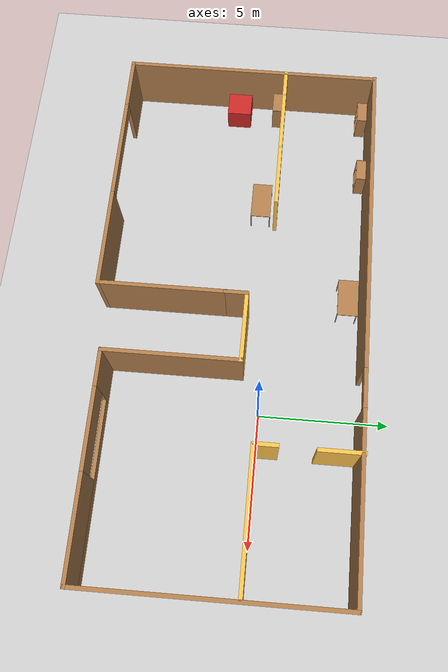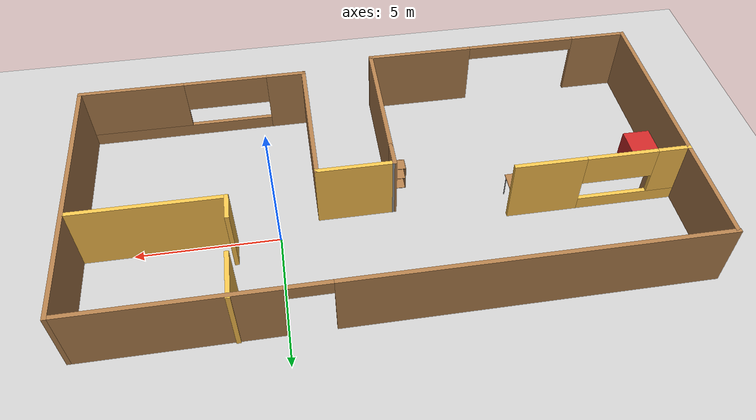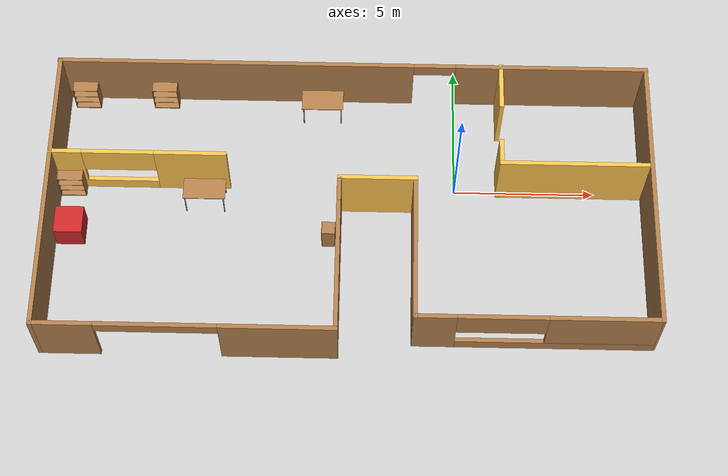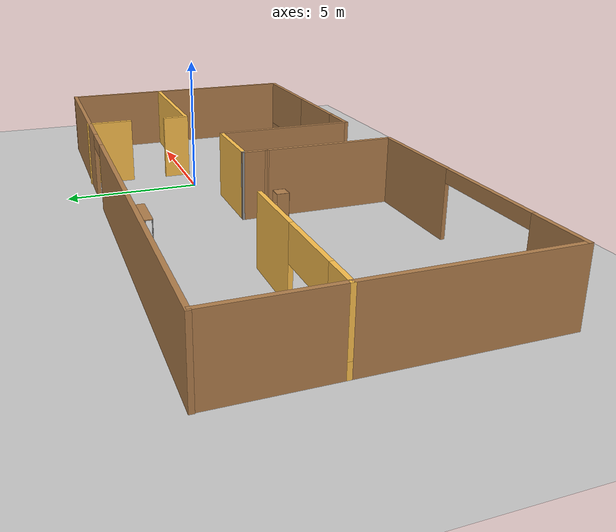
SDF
<sdf version="1.6">
 <world name="default">
  <model name="ground_plane">
   <static>1</static>
   <link name="link">
    <collision name="collision">
     <geometry><plane><normal>0 0 1</normal><size>100 100</size></plane></geometry>
     <surface>
      <contact><collide_bitmask>65535</collide_bitmask></contact>
      <friction><ode><mu>100</mu><mu2>50</mu2></ode></friction>
     </surface>
    </collision>
    <visual name="visual">
     <cast_shadows>0</cast_shadows>
     <geometry><plane><normal>0 0 1</normal><size>100 100</size></plane></geometry>
     <material>
      <script><uri>file://media/materials/scripts/gazebo.material</uri><name>Gazebo/Grey</name></script>
     </material>
    </visual>
   </link>
  </model>
  <model name="Building">
   <pose>-3.7513 -1.28826 0 0 -0 0</pose>
   <link name="Wall_0">
    <collision name="Wall_0_Collision">
     <geometry><box><size>10.3409 0.15 2.5</size></box></geometry>
     <pose>0 0 1.25 0 -0 0</pose>
    </collision>
    <visual name="Wall_0_Visual">
     <pose>0 0 1.25 0 -0 0</pose>
     <geometry><box><size>10.3409 0.15 2.5</size></box></geometry>
     <material>
      <script><uri>file://media/materials/scripts/gazebo.material</uri><name>Gazebo/Wood</name></script>
      <ambient>1 1 1 1</ambient>
     </material>
     <meta><layer>0</layer></meta>
    </visual>
    <pose>-10.4852 -0.044615 0 0 0 -1.5708</pose>
   </link>
   <link name="Wall_1">
    <pose>-5.42169 -5.14004 0 0 -0 0</pose>
    <visual name="Wall_1_Visual_0">
     <pose>-4.05898 0 1.25 0 -0 0</pose>
     <geometry><box><size>2.15905 0.15 2.5</size></box></geometry>
     <material>
      <script><uri>file://media/materials/scripts/gazebo.material</uri><name>Gazebo/Wood</name></script>
      <ambient>0.760784 0.662745 0.627451 1</ambient>
     </material>
     <meta><layer>0</layer></meta>
    </visual>
    <collision name="Wall_1_Collision_0">
     <geometry><box><size>2.15905 0.15 2.5</size></box></geometry>
     <pose>-4.05898 0 1.25 0 -0 0</pose>
    </collision>
    <visual name="Wall_1_Visual_1">
     <pose>3.14775 0 1.25 0 -0 0</pose>
     <geometry><box><size>3.98151 0.15 2.5</size></box></geometry>
     <material>
      <script><uri>file://media/materials/scripts/gazebo.material</uri><name>Gazebo/Wood</name></script>
      <ambient>0.760784 0.662745 0.627451 1</ambient>
     </material>
     <meta><layer>0</layer></meta>
    </visual>
    <collision name="Wall_1_Collision_1">
     <geometry><box><size>3.98151 0.15 2.5</size></box></geometry>
     <pose>3.14775 0 1.25 0 -0 0</pose>
    </collision>
    <visual name="Wall_1_Visual_2">
     <pose>-0.91123 0 2.25 0 -0 0</pose>
     <geometry><box><size>4.13645 0.15 0.5</size></box></geometry>
     <material>
      <script><uri>file://media/materials/scripts/gazebo.material</uri><name>Gazebo/Wood</name></script>
      <ambient>0.760784 0.662745 0.627451 1</ambient>
     </material>
     <meta><layer>0</layer></meta>
    </visual>
    <collision name="Wall_1_Collision_2">
     <geometry><box><size>4.13645 0.15 0.5</size></box></geometry>
     <pose>-0.91123 0 2.25 0 -0 0</pose>
    </collision>
   </link>
   <link name="Wall_11">
    <pose>-7.43569 1.35896 0 0 -0 3.14159</pose>
    <visual name="Wall_11_Visual_0">
     <pose>-1.85039 0 1.25 0 -0 0</pose>
     <geometry><box><size>2.54921 0.15 2.5</size></box></geometry>
     <material>
      <script><uri>file://media/materials/scripts/gazebo.material</uri><name>Gazebo/Grey</name></script>
      <ambient>1 0.764706 0.305882 1</ambient>
     </material>
     <meta><layer>0</layer></meta>
    </visual>
    <collision name="Wall_11_Collision_0">
     <geometry><box><size>2.54921 0.15 2.5</size></box></geometry>
     <pose>-1.85039 0 1.25 0 -0 0</pose>
    </collision>
    <visual name="Wall_11_Visual_1">
     <pose>1.27461 0 0.25 0 -0 0</pose>
     <geometry><box><size>3.70079 0.15 0.5</size></box></geometry>
     <material>
      <script><uri>file://media/materials/scripts/gazebo.material</uri><name>Gazebo/Grey</name></script>
      <ambient>1 0.764706 0.305882 1</ambient>
     </material>
     <meta><layer>0</layer></meta>
    </visual>
    <collision name="Wall_11_Collision_1">
     <geometry><box><size>3.70079 0.15 0.5</size></box></geometry>
     <pose>1.27461 0 0.25 0 -0 0</pose>
    </collision>
    <visual name="Wall_11_Visual_2">
     <pose>2.53911 0 1.5 0 -0 0</pose>
     <geometry><box><size>1.17177 0.15 2</size></box></geometry>
     <material>
      <script><uri>file://media/materials/scripts/gazebo.material</uri><name>Gazebo/Grey</name></script>
      <ambient>1 0.764706 0.305882 1</ambient>
     </material>
     <meta><layer>0</layer></meta>
    </visual>
    <collision name="Wall_11_Collision_2">
     <geometry><box><size>1.17177 0.15 2</size></box></geometry>
     <pose>2.53911 0 1.5 0 -0 0</pose>
    </collision>
    <visual name="Wall_11_Visual_3">
     <pose>0.688722 0 1.9 0 -0 0</pose>
     <geometry><box><size>2.52901 0.15 1.2</size></box></geometry>
     <material>
      <script><uri>file://media/materials/scripts/gazebo.material</uri><name>Gazebo/Grey</name></script>
      <ambient>1 0.764706 0.305882 1</ambient>
     </material>
     <meta><layer>0</layer></meta>
    </visual>
    <collision name="Wall_11_Collision_3">
     <geometry><box><size>2.52901 0.15 1.2</size></box></geometry>
     <pose>0.688722 0 1.9 0 -0 0</pose>
    </collision>
   </link>
   <link name="Wall_16">
    <collision name="Wall_16_Collision">
     <geometry><box><size>1.75 0.15 2.5</size></box></geometry>
     <pose>0 0 1.25 0 -0 0</pose>
    </collision>
    <visual name="Wall_16_Visual">
     <pose>0 0 1.25 0 -0 0</pose>
     <geometry><box><size>1.75 0.15 2.5</size></box></geometry>
     <material>
      <script><uri>file://media/materials/scripts/gazebo.material</uri><name>Gazebo/Grey</name></script>
      <ambient>1 0.764706 0.305882 1</ambient>
     </material>
     <meta><layer>0</layer></meta>
    </visual>
    <pose>5.32883 4.34004 0 0 -0 1.5708</pose>
   </link>
   <link name="Wall_18">
    <collision name="Wall_18_Collision">
     <geometry><box><size>1 0.15 2.5</size></box></geometry>
     <pose>0 0 1.25 0 -0 0</pose>
    </collision>
    <visual name="Wall_18_Visual">
     <pose>0 0 1.25 0 -0 0</pose>
     <geometry><box><size>1 0.15 2.5</size></box></geometry>
     <material>
      <script><uri>file://media/materials/scripts/gazebo.material</uri><name>Gazebo/Grey</name></script>
      <ambient>1 0.764706 0.305882 1</ambient>
     </material>
     <meta><layer>0</layer></meta>
    </visual>
    <pose>5.29366 1.63753 0 0 0 -1.5708</pose>
   </link>
   <link name="Wall_19">
    <collision name="Wall_19_Collision">
     <geometry><box><size>5.25 0.15 2.5</size></box></geometry>
     <pose>0 0 1.25 0 -0 0</pose>
    </collision>
    <visual name="Wall_19_Visual">
     <pose>0 0 1.25 0 -0 0</pose>
     <geometry><box><size>5.25 0.15 2.5</size></box></geometry>
     <material>
      <script><uri>file://media/materials/scripts/gazebo.material</uri><name>Gazebo/Grey</name></script>
      <ambient>1 0.764706 0.305882 1</ambient>
     </material>
     <meta><layer>0</layer></meta>
    </visual>
    <pose>7.84366 1.21253 0 0 -0 0</pose>
   </link>
   <link name="Wall_2">
    <collision name="Wall_2_Collision">
     <geometry><box><size>5 0.15 2.5</size></box></geometry>
     <pose>0 0 1.25 0 -0 0</pose>
    </collision>
    <visual name="Wall_2_Visual">
     <pose>0 0 1.25 0 -0 0</pose>
     <geometry><box><size>5 0.15 2.5</size></box></geometry>
     <material>
      <script><uri>file://media/materials/scripts/gazebo.material</uri><name>Gazebo/Wood</name></script>
      <ambient>1 1 1 1</ambient>
     </material>
     <meta><layer>0</layer></meta>
    </visual>
    <pose>-0.358372 -2.71492 0 0 -0 1.57087</pose>
   </link>
   <link name="Wall_3">
    <collision name="Wall_3_Collision">
     <geometry><box><size>0.975755 0.15 2.5</size></box></geometry>
     <pose>0 0 1.25 0 -0 0</pose>
    </collision>
    <visual name="Wall_3_Visual">
     <pose>0 0 1.25 0 -0 0</pose>
     <geometry><box><size>0.975755 0.15 2.5</size></box></geometry>
     <material>
      <script><uri>file://media/materials/scripts/gazebo.material</uri><name>Gazebo/Wood</name></script>
      <ambient>1 1 1 1</ambient>
     </material>
     <meta><layer>0</layer></meta>
    </visual>
    <pose>-0.358372 0.123081 0 0 -0 1.57037</pose>
   </link>
   <link name="Wall_4">
    <collision name="Wall_4_Collision">
     <geometry><box><size>0.15 0.15 2.5</size></box></geometry>
     <pose>0 0 1.25 0 -0 0</pose>
    </collision>
    <visual name="Wall_4_Visual">
     <pose>0 0 1.25 0 -0 0</pose>
     <geometry><box><size>0.15 0.15 2.5</size></box></geometry>
     <material>
      <script><uri>file://media/materials/scripts/gazebo.material</uri><name>Gazebo/Grey</name></script>
      <ambient>1 1 1 1</ambient>
     </material>
     <meta><layer>0</layer></meta>
    </visual>
    <pose>-0.358196 0.535958 0 0 -0 0</pose>
   </link>
   <link name="Wall_5">
    <collision name="Wall_5_Collision">
     <geometry><box><size>2.795 0.15 2.5</size></box></geometry>
     <pose>0 0 1.25 0 -0 0</pose>
    </collision>
    <visual name="Wall_5_Visual">
     <pose>0 0 1.25 0 -0 0</pose>
     <geometry><box><size>2.795 0.15 2.5</size></box></geometry>
     <material>
      <script><uri>file://media/materials/scripts/gazebo.material</uri><name>Gazebo/Grey</name></script>
      <ambient>1 0.764706 0.305882 1</ambient>
     </material>
     <meta><layer>0</layer></meta>
    </visual>
    <pose>0.964304 0.535958 0 0 -0 0</pose>
   </link>
   <link name="Wall_6">
    <collision name="Wall_6_Collision">
     <geometry><box><size>5.3177 0.15 2.5</size></box></geometry>
     <pose>0 0 1.25 0 -0 0</pose>
    </collision>
    <visual name="Wall_6_Visual">
     <pose>0 0 1.25 0 -0 0</pose>
     <geometry><box><size>5.3177 0.15 2.5</size></box></geometry>
     <material>
      <script><uri>file://media/materials/scripts/gazebo.material</uri><name>Gazebo/Wood</name></script>
      <ambient>1 1 1 1</ambient>
     </material>
     <meta><layer>0</layer></meta>
    </visual>
    <pose>2.2868 -2.04804 0 0 0 -1.5708</pose>
   </link>
   <link name="Wall_7">
    <pose>6.3973 -4.62854 0 0 -0 0.000851</pose>
    <visual name="Wall_7_Visual_0">
     <pose>-3.44746 0 1.25 0 -0 0</pose>
     <geometry><box><size>1.47674 0.15 2.5</size></box></geometry>
     <material>
      <script><uri>file://media/materials/scripts/gazebo.material</uri><name>Gazebo/Wood</name></script>
      <ambient>1 1 1 1</ambient>
     </material>
     <meta><layer>0</layer></meta>
    </visual>
    <collision name="Wall_7_Collision_0">
     <geometry><box><size>1.47674 0.15 2.5</size></box></geometry>
     <pose>-3.44746 0 1.25 0 -0 0</pose>
    </collision>
    <visual name="Wall_7_Visual_1">
     <pose>0.738369 0 0.25 0 -0 0</pose>
     <geometry><box><size>6.89492 0.15 0.5</size></box></geometry>
     <material>
      <script><uri>file://media/materials/scripts/gazebo.material</uri><name>Gazebo/Wood</name></script>
      <ambient>1 1 1 1</ambient>
     </material>
     <meta><layer>0</layer></meta>
    </visual>
    <collision name="Wall_7_Collision_1">
     <geometry><box><size>6.89492 0.15 0.5</size></box></geometry>
     <pose>0.738369 0 0.25 0 -0 0</pose>
    </collision>
    <visual name="Wall_7_Visual_2">
     <pose>2.26409 0 1.5 0 -0 0</pose>
     <geometry><box><size>3.84348 0.15 2</size></box></geometry>
     <material>
      <script><uri>file://media/materials/scripts/gazebo.material</uri><name>Gazebo/Wood</name></script>
      <ambient>1 1 1 1</ambient>
     </material>
     <meta><layer>0</layer></meta>
    </visual>
    <collision name="Wall_7_Collision_2">
     <geometry><box><size>3.84348 0.15 2</size></box></geometry>
     <pose>2.26409 0 1.5 0 -0 0</pose>
    </collision>
    <visual name="Wall_7_Visual_3">
     <pose>-1.18337 0 1.9 0 -0 0</pose>
     <geometry><box><size>3.05144 0.15 1.2</size></box></geometry>
     <material>
      <script><uri>file://media/materials/scripts/gazebo.material</uri><name>Gazebo/Wood</name></script>
      <ambient>1 1 1 1</ambient>
     </material>
     <meta><layer>0</layer></meta>
    </visual>
    <collision name="Wall_7_Collision_3">
     <geometry><box><size>3.05144 0.15 1.2</size></box></geometry>
     <pose>-1.18337 0 1.9 0 -0 0</pose>
    </collision>
   </link>
   <link name="Wall_8">
    <collision name="Wall_8_Collision">
     <geometry><box><size>9.87 0.15 2.5</size></box></geometry>
     <pose>0 0 1.25 0 -0 0</pose>
    </collision>
    <visual name="Wall_8_Visual">
     <pose>0 0 1.25 0 -0 0</pose>
     <geometry><box><size>9.87 0.15 2.5</size></box></geometry>
     <material>
      <script><uri>file://media/materials/scripts/gazebo.material</uri><name>Gazebo/Wood</name></script>
      <ambient>1 1 1 1</ambient>
     </material>
     <meta><layer>0</layer></meta>
    </visual>
    <pose>10.5078 0.234958 0 0 -0 1.5708</pose>
   </link>
   <link name="Wall_9">
    <pose>-0.000196 5.09496 0 0 -0 3.14159</pose>
    <visual name="Wall_9_Visual_0">
     <pose>-7.14444 0 1.25 0 -0 0</pose>
     <geometry><box><size>6.87713 0.15 2.5</size></box></geometry>
     <material>
      <script><uri>file://media/materials/scripts/gazebo.material</uri><name>Gazebo/Wood</name></script>
      <ambient>1 1 1 1</ambient>
     </material>
     <meta><layer>0</layer></meta>
    </visual>
    <collision name="Wall_9_Collision_0">
     <geometry><box><size>6.87713 0.15 2.5</size></box></geometry>
     <pose>-7.14444 0 1.25 0 -0 0</pose>
    </collision>
    <visual name="Wall_9_Visual_1">
     <pose>4.18758 0 1.25 0 -0 0</pose>
     <geometry><box><size>12.7908 0.15 2.5</size></box></geometry>
     <material>
      <script><uri>file://media/materials/scripts/gazebo.material</uri><name>Gazebo/Wood</name></script>
      <ambient>1 1 1 1</ambient>
     </material>
     <meta><layer>0</layer></meta>
    </visual>
    <collision name="Wall_9_Collision_1">
     <geometry><box><size>12.7908 0.15 2.5</size></box></geometry>
     <pose>4.18758 0 1.25 0 -0 0</pose>
    </collision>
    <visual name="Wall_9_Visual_2">
     <pose>-2.95686 0 2.25 0 -0 0</pose>
     <geometry><box><size>1.49804 0.15 0.5</size></box></geometry>
     <material>
      <script><uri>file://media/materials/scripts/gazebo.material</uri><name>Gazebo/Wood</name></script>
      <ambient>1 1 1 1</ambient>
     </material>
     <meta><layer>0</layer></meta>
    </visual>
    <collision name="Wall_9_Collision_2">
     <geometry><box><size>1.49804 0.15 0.5</size></box></geometry>
     <pose>-2.95686 0 2.25 0 -0 0</pose>
    </collision>
   </link>
   <static>1</static>
  </model>
  <model name="table_clone">
   <static>1</static>
   <link name="link">
    <collision name="surface">
     <pose>0 0 1 0 -0 0</pose>
     <geometry><box><size>1.5 0.8 0.03</size></box></geometry>
     <surface><friction><ode><mu>0.6</mu><mu2>0.6</mu2></ode></friction></surface>
    </collision>
    <visual name="visual1">
     <pose>0 0 1 0 -0 0</pose>
     <geometry><box><size>1.5 0.8 0.03</size></box></geometry>
     <material>
      <script><uri>file://media/materials/scripts/gazebo.material</uri><name>Gazebo/Wood</name></script>
     </material>
    </visual>
    <collision name="front_left_leg">
     <pose>0.68 0.38 0.5 0 -0 0</pose>
     <geometry><cylinder><radius>0.02</radius><length>1</length></cylinder></geometry>
    </collision>
    <visual name="front_left_leg">
     <pose>0.68 0.38 0.5 0 -0 0</pose>
     <geometry><cylinder><radius>0.02</radius><length>1</length></cylinder></geometry>
     <material>
      <script><uri>file://media/materials/scripts/gazebo.material</uri><name>Gazebo/Grey</name></script>
     </material>
    </visual>
    <collision name="front_right_leg">
     <pose>0.68 -0.38 0.5 0 -0 0</pose>
     <geometry><cylinder><radius>0.02</radius><length>1</length></cylinder></geometry>
    </collision>
    <visual name="front_right_leg">
     <pose>0.68 -0.38 0.5 0 -0 0</pose>
     <geometry><cylinder><radius>0.02</radius><length>1</length></cylinder></geometry>
     <material>
      <script><uri>file://media/materials/scripts/gazebo.material</uri><name>Gazebo/Grey</name></script>
     </material>
    </visual>
    <collision name="back_right_leg">
     <pose>-0.68 -0.38 0.5 0 -0 0</pose>
     <geometry><cylinder><radius>0.02</radius><length>1</length></cylinder></geometry>
    </collision>
    <visual name="back_right_leg">
     <pose>-0.68 -0.38 0.5 0 -0 0</pose>
     <geometry><cylinder><radius>0.02</radius><length>1</length></cylinder></geometry>
     <material>
      <script><uri>file://media/materials/scripts/gazebo.material</uri><name>Gazebo/Grey</name></script>
     </material>
    </visual>
    <collision name="back_left_leg">
     <pose>-0.68 0.38 0.5 0 -0 0</pose>
     <geometry><cylinder><radius>0.02</radius><length>1</length></cylinder></geometry>
    </collision>
    <visual name="back_left_leg">
     <pose>-0.68 0.38 0.5 0 -0 0</pose>
     <geometry><cylinder><radius>0.02</radius><length>1</length></cylinder></geometry>
     <material>
      <script><uri>file://media/materials/scripts/gazebo.material</uri><name>Gazebo/Grey</name></script>
     </material>
    </visual>
   </link>
   <pose>-4.81821 3.19325 0 0 -0 0</pose>
  </model>
  <model name="table_clone_clone">
   <static>1</static>
   <link name="link">
    <collision name="surface">
     <pose>0 0 1 0 -0 0</pose>
     <geometry><box><size>1.5 0.8 0.03</size></box></geometry>
     <surface><friction><ode><mu>0.6</mu><mu2>0.6</mu2></ode></friction></surface>
    </collision>
    <visual name="visual1">
     <pose>0 0 1 0 -0 0</pose>
     <geometry><box><size>1.5 0.8 0.03</size></box></geometry>
     <material>
      <script><uri>file://media/materials/scripts/gazebo.material</uri><name>Gazebo/Wood</name></script>
     </material>
    </visual>
    <collision name="front_left_leg">
     <pose>0.68 0.38 0.5 0 -0 0</pose>
     <geometry><cylinder><radius>0.02</radius><length>1</length></cylinder></geometry>
    </collision>
    <visual name="front_left_leg">
     <pose>0.68 0.38 0.5 0 -0 0</pose>
     <geometry><cylinder><radius>0.02</radius><length>1</length></cylinder></geometry>
     <material>
      <script><uri>file://media/materials/scripts/gazebo.material</uri><name>Gazebo/Grey</name></script>
     </material>
    </visual>
    <collision name="front_right_leg">
     <pose>0.68 -0.38 0.5 0 -0 0</pose>
     <geometry><cylinder><radius>0.02</radius><length>1</length></cylinder></geometry>
    </collision>
    <visual name="front_right_leg">
     <pose>0.68 -0.38 0.5 0 -0 0</pose>
     <geometry><cylinder><radius>0.02</radius><length>1</length></cylinder></geometry>
     <material>
      <script><uri>file://media/materials/scripts/gazebo.material</uri><name>Gazebo/Grey</name></script>
     </material>
    </visual>
    <collision name="back_right_leg">
     <pose>-0.68 -0.38 0.5 0 -0 0</pose>
     <geometry><cylinder><radius>0.02</radius><length>1</length></cylinder></geometry>
    </collision>
    <visual name="back_right_leg">
     <pose>-0.68 -0.38 0.5 0 -0 0</pose>
     <geometry><cylinder><radius>0.02</radius><length>1</length></cylinder></geometry>
     <material>
      <script><uri>file://media/materials/scripts/gazebo.material</uri><name>Gazebo/Grey</name></script>
     </material>
    </visual>
    <collision name="back_left_leg">
     <pose>-0.68 0.38 0.5 0 -0 0</pose>
     <geometry><cylinder><radius>0.02</radius><length>1</length></cylinder></geometry>
    </collision>
    <visual name="back_left_leg">
     <pose>-0.68 0.38 0.5 0 -0 0</pose>
     <geometry><cylinder><radius>0.02</radius><length>1</length></cylinder></geometry>
     <material>
      <script><uri>file://media/materials/scripts/gazebo.material</uri><name>Gazebo/Grey</name></script>
     </material>
    </visual>
   </link>
   <pose>-8.90935 -0.542633 0 0 -0 0</pose>
  </model>
  <model name="bookshelf_0">
   <static>1</static>
   <link name="link">
    <inertial><mass>1</mass></inertial>
    <collision name="back">
     <pose>0 0.005 0.6 0 -0 0</pose>
     <geometry><box><size>0.9 0.01 1.2</size></box></geometry>
    </collision>
    <visual name="visual1">
     <pose>0 0.005 0.6 0 -0 0</pose>
     <geometry><box><size>0.9 0.01 1.2</size></box></geometry>
     <material>
      <script><uri>file://media/materials/scripts/gazebo.material</uri><name>Gazebo/Wood</name></script>
     </material>
    </visual>
    <collision name="left_side">
     <pose>0.45 -0.195 0.6 0 -0 0</pose>
     <geometry><box><size>0.02 0.4 1.2</size></box></geometry>
    </collision>
    <visual name="visual2">
     <pose>0.45 -0.195 0.6 0 -0 0</pose>
     <geometry><box><size>0.02 0.4 1.2</size></box></geometry>
     <material>
      <script><uri>file://media/materials/scripts/gazebo.material</uri><name>Gazebo/Wood</name></script>
     </material>
    </visual>
    <collision name="right_side">
     <pose>-0.45 -0.195 0.6 0 -0 0</pose>
     <geometry><box><size>0.02 0.4 1.2</size></box></geometry>
    </collision>
    <visual name="visual3">
     <pose>-0.45 -0.195 0.6 0 -0 0</pose>
     <geometry><box><size>0.02 0.4 1.2</size></box></geometry>
     <material>
      <script><uri>file://media/materials/scripts/gazebo.material</uri><name>Gazebo/Wood</name></script>
     </material>
    </visual>
    <collision name="bottom">
     <pose>0 -0.195 0.03 0 -0 0</pose>
     <geometry><box><size>0.88 0.4 0.06</size></box></geometry>
    </collision>
    <visual name="visual4">
     <pose>0 -0.195 0.03 0 -0 0</pose>
     <geometry><box><size>0.88 0.4 0.06</size></box></geometry>
     <material>
      <script><uri>file://media/materials/scripts/gazebo.material</uri><name>Gazebo/Wood</name></script>
     </material>
    </visual>
    <collision name="top">
     <pose>0 -0.195 1.19 0 -0 0</pose>
     <geometry><box><size>0.88 0.4 0.02</size></box></geometry>
    </collision>
    <visual name="visual5">
     <pose>0 -0.195 1.19 0 -0 0</pose>
     <geometry><box><size>0.88 0.4 0.02</size></box></geometry>
     <material>
      <script><uri>file://media/materials/scripts/gazebo.material</uri><name>Gazebo/Wood</name></script>
     </material>
    </visual>
    <collision name="low_shelf">
     <pose>0 -0.195 0.43 0 -0 0</pose>
     <geometry><box><size>0.88 0.4 0.02</size></box></geometry>
    </collision>
    <visual name="visual6">
     <pose>0 -0.195 0.43 0 -0 0</pose>
     <geometry><box><size>0.88 0.4 0.02</size></box></geometry>
     <material>
      <script><uri>file://media/materials/scripts/gazebo.material</uri><name>Gazebo/Wood</name></script>
     </material>
    </visual>
    <collision name="high_shelf">
     <pose>0 -0.195 0.8 0 -0 0</pose>
     <geometry><box><size>0.88 0.4 0.02</size></box></geometry>
    </collision>
    <visual name="visual7">
     <pose>0 -0.195 0.8 0 -0 0</pose>
     <geometry><box><size>0.88 0.4 0.02</size></box></geometry>
     <material>
      <script><uri>file://media/materials/scripts/gazebo.material</uri><name>Gazebo/Wood</name></script>
     </material>
    </visual>
   </link>
   <pose>-13.495 3.67812 0 0 -0 0</pose>
  </model>
  <model name="bookshelf_0_clone">
   <static>1</static>
   <link name="link">
    <inertial><mass>1</mass></inertial>
    <collision name="back">
     <pose>0 0.005 0.6 0 -0 0</pose>
     <geometry><box><size>0.9 0.01 1.2</size></box></geometry>
    </collision>
    <visual name="visual1">
     <pose>0 0.005 0.6 0 -0 0</pose>
     <geometry><box><size>0.9 0.01 1.2</size></box></geometry>
     <material>
      <script><uri>file://media/materials/scripts/gazebo.material</uri><name>Gazebo/Wood</name></script>
     </material>
    </visual>
    <collision name="left_side">
     <pose>0.45 -0.195 0.6 0 -0 0</pose>
     <geometry><box><size>0.02 0.4 1.2</size></box></geometry>
    </collision>
    <visual name="visual2">
     <pose>0.45 -0.195 0.6 0 -0 0</pose>
     <geometry><box><size>0.02 0.4 1.2</size></box></geometry>
     <material>
      <script><uri>file://media/materials/scripts/gazebo.material</uri><name>Gazebo/Wood</name></script>
     </material>
    </visual>
    <collision name="right_side">
     <pose>-0.45 -0.195 0.6 0 -0 0</pose>
     <geometry><box><size>0.02 0.4 1.2</size></box></geometry>
    </collision>
    <visual name="visual3">
     <pose>-0.45 -0.195 0.6 0 -0 0</pose>
     <geometry><box><size>0.02 0.4 1.2</size></box></geometry>
     <material>
      <script><uri>file://media/materials/scripts/gazebo.material</uri><name>Gazebo/Wood</name></script>
     </material>
    </visual>
    <collision name="bottom">
     <pose>0 -0.195 0.03 0 -0 0</pose>
     <geometry><box><size>0.88 0.4 0.06</size></box></geometry>
    </collision>
    <visual name="visual4">
     <pose>0 -0.195 0.03 0 -0 0</pose>
     <geometry><box><size>0.88 0.4 0.06</size></box></geometry>
     <material>
      <script><uri>file://media/materials/scripts/gazebo.material</uri><name>Gazebo/Wood</name></script>
     </material>
    </visual>
    <collision name="top">
     <pose>0 -0.195 1.19 0 -0 0</pose>
     <geometry><box><size>0.88 0.4 0.02</size></box></geometry>
    </collision>
    <visual name="visual5">
     <pose>0 -0.195 1.19 0 -0 0</pose>
     <geometry><box><size>0.88 0.4 0.02</size></box></geometry>
     <material>
      <script><uri>file://media/materials/scripts/gazebo.material</uri><name>Gazebo/Wood</name></script>
     </material>
    </visual>
    <collision name="low_shelf">
     <pose>0 -0.195 0.43 0 -0 0</pose>
     <geometry><box><size>0.88 0.4 0.02</size></box></geometry>
    </collision>
    <visual name="visual6">
     <pose>0 -0.195 0.43 0 -0 0</pose>
     <geometry><box><size>0.88 0.4 0.02</size></box></geometry>
     <material>
      <script><uri>file://media/materials/scripts/gazebo.material</uri><name>Gazebo/Wood</name></script>
     </material>
    </visual>
    <collision name="high_shelf">
     <pose>0 -0.195 0.8 0 -0 0</pose>
     <geometry><box><size>0.88 0.4 0.02</size></box></geometry>
    </collision>
    <visual name="visual7">
     <pose>0 -0.195 0.8 0 -0 0</pose>
     <geometry><box><size>0.88 0.4 0.02</size></box></geometry>
     <material>
      <script><uri>file://media/materials/scripts/gazebo.material</uri><name>Gazebo/Wood</name></script>
     </material>
    </visual>
   </link>
   <pose>-10.5967 3.72008 0 0 -0 0</pose>
  </model>
  <model name="cabinet_clone_0">
   <static>1</static>
   <link name="cabinet_bottom_plate">
    <inertial>
     <pose>0 0 -1 0 -0 0</pose>
     <inertia><ixx>2.05</ixx><ixy>0</ixy><ixz>0</ixz><iyy>2.05</iyy><iyz>0</iyz><izz>2.05</izz></inertia>
     <mass>25</mass>
    </inertial>
    <collision name="cabinet_bottom_plate_geom">
     <pose>0 0 0.01 0 -0 0</pose>
     <geometry><box><size>0.45 0.45 0.02</size></box></geometry>
    </collision>
    <visual name="cabinet_bottom_plate_geom_visual">
     <pose>0 0 0.01 0 -0 0</pose>
     <geometry><box><size>0.45 0.45 0.02</size></box></geometry>
     <material>
      <script><uri>file://media/materials/scripts/gazebo.material</uri><name>Gazebo/Wood</name></script>
     </material>
    </visual>
    <collision name="cabinet_bottom_plate_geom_cabinet_back_plate">
     <pose>0.235 0 0.51 0 -0 0</pose>
     <geometry><box><size>0.02 0.45 1.02</size></box></geometry>
    </collision>
    <visual name="cabinet_bottom_plate_geom_cabinet_back_plate_visual">
     <pose>0.235 0 0.51 0 -0 0</pose>
     <geometry><box><size>0.02 0.45 1.02</size></box></geometry>
     <material>
      <script><uri>file://media/materials/scripts/gazebo.material</uri><name>Gazebo/Wood</name></script>
     </material>
    </visual>
    <collision name="cabinet_bottom_plate_geom_cabinet_left_plate">
     <pose>0 0.235 0.51 0 -0 0</pose>
     <geometry><box><size>0.45 0.02 1.02</size></box></geometry>
    </collision>
    <visual name="cabinet_bottom_plate_geom_cabinet_left_plate_visual">
     <pose>0 0.235 0.51 0 -0 0</pose>
     <geometry><box><size>0.45 0.02 1.02</size></box></geometry>
     <material>
      <script><uri>file://media/materials/scripts/gazebo.material</uri><name>Gazebo/Wood</name></script>
     </material>
    </visual>
    <collision name="cabinet_bottom_plate_geom_cabinet_middle_plate">
     <pose>0 0 0.51 0 -0 0</pose>
     <geometry><box><size>0.45 0.45 0.02</size></box></geometry>
    </collision>
    <visual name="cabinet_bottom_plate_geom_cabinet_middle_plate_visual">
     <pose>0 0 0.51 0 -0 0</pose>
     <geometry><box><size>0.45 0.45 0.02</size></box></geometry>
     <material>
      <script><uri>file://media/materials/scripts/gazebo.material</uri><name>Gazebo/Wood</name></script>
     </material>
    </visual>
    <collision name="cabinet_bottom_plate_geom_cabinet_right_plate">
     <pose>0 -0.235 0.51 0 -0 0</pose>
     <geometry><box><size>0.45 0.02 1.02</size></box></geometry>
    </collision>
    <visual name="cabinet_bottom_plate_geom_cabinet_right_plate_visual">
     <pose>0 -0.235 0.51 0 -0 0</pose>
     <geometry><box><size>0.45 0.02 1.02</size></box></geometry>
     <material>
      <script><uri>file://media/materials/scripts/gazebo.material</uri><name>Gazebo/Wood</name></script>
     </material>
    </visual>
    <collision name="cabinet_bottom_plate_geom_cabinet_top_plate">
     <pose>0 0 1.01 0 -0 0</pose>
     <geometry><box><size>0.45 0.45 0.02</size></box></geometry>
    </collision>
    <visual name="cabinet_bottom_plate_geom_cabinet_top_plate_visual">
     <pose>0 0 1.01 0 -0 0</pose>
     <geometry><box><size>0.45 0.45 0.02</size></box></geometry>
     <material>
      <script><uri>file://media/materials/scripts/gazebo.material</uri><name>Gazebo/Wood</name></script>
     </material>
    </visual>
   </link>
   <pose>-4.47117 -2.00227 0 0 0 -1.58296</pose>
  </model>
  <model name="bookshelf_1">
   <static>1</static>
   <link name="link">
    <inertial><mass>1</mass></inertial>
    <collision name="back">
     <pose>0 0.005 0.6 0 -0 0</pose>
     <geometry><box><size>0.9 0.01 1.2</size></box></geometry>
    </collision>
    <visual name="visual1">
     <pose>0 0.005 0.6 0 -0 0</pose>
     <geometry><box><size>0.9 0.01 1.2</size></box></geometry>
     <material>
      <script><uri>file://media/materials/scripts/gazebo.material</uri><name>Gazebo/Wood</name></script>
     </material>
    </visual>
    <collision name="left_side">
     <pose>0.45 -0.195 0.6 0 -0 0</pose>
     <geometry><box><size>0.02 0.4 1.2</size></box></geometry>
    </collision>
    <visual name="visual2">
     <pose>0.45 -0.195 0.6 0 -0 0</pose>
     <geometry><box><size>0.02 0.4 1.2</size></box></geometry>
     <material>
      <script><uri>file://media/materials/scripts/gazebo.material</uri><name>Gazebo/Wood</name></script>
     </material>
    </visual>
    <collision name="right_side">
     <pose>-0.45 -0.195 0.6 0 -0 0</pose>
     <geometry><box><size>0.02 0.4 1.2</size></box></geometry>
    </collision>
    <visual name="visual3">
     <pose>-0.45 -0.195 0.6 0 -0 0</pose>
     <geometry><box><size>0.02 0.4 1.2</size></box></geometry>
     <material>
      <script><uri>file://media/materials/scripts/gazebo.material</uri><name>Gazebo/Wood</name></script>
     </material>
    </visual>
    <collision name="bottom">
     <pose>0 -0.195 0.03 0 -0 0</pose>
     <geometry><box><size>0.88 0.4 0.06</size></box></geometry>
    </collision>
    <visual name="visual4">
     <pose>0 -0.195 0.03 0 -0 0</pose>
     <geometry><box><size>0.88 0.4 0.06</size></box></geometry>
     <material>
      <script><uri>file://media/materials/scripts/gazebo.material</uri><name>Gazebo/Wood</name></script>
     </material>
    </visual>
    <collision name="top">
     <pose>0 -0.195 1.19 0 -0 0</pose>
     <geometry><box><size>0.88 0.4 0.02</size></box></geometry>
    </collision>
    <visual name="visual5">
     <pose>0 -0.195 1.19 0 -0 0</pose>
     <geometry><box><size>0.88 0.4 0.02</size></box></geometry>
     <material>
      <script><uri>file://media/materials/scripts/gazebo.material</uri><name>Gazebo/Wood</name></script>
     </material>
    </visual>
    <collision name="low_shelf">
     <pose>0 -0.195 0.43 0 -0 0</pose>
     <geometry><box><size>0.88 0.4 0.02</size></box></geometry>
    </collision>
    <visual name="visual6">
     <pose>0 -0.195 0.43 0 -0 0</pose>
     <geometry><box><size>0.88 0.4 0.02</size></box></geometry>
     <material>
      <script><uri>file://media/materials/scripts/gazebo.material</uri><name>Gazebo/Wood</name></script>
     </material>
    </visual>
    <collision name="high_shelf">
     <pose>0 -0.195 0.8 0 -0 0</pose>
     <geometry><box><size>0.88 0.4 0.02</size></box></geometry>
    </collision>
    <visual name="visual7">
     <pose>0 -0.195 0.8 0 -0 0</pose>
     <geometry><box><size>0.88 0.4 0.02</size></box></geometry>
     <material>
      <script><uri>file://media/materials/scripts/gazebo.material</uri><name>Gazebo/Wood</name></script>
     </material>
    </visual>
   </link>
   <pose>-13.6966 -0.003768 0 0 -0 0</pose>
  </model>
  <model name="red_unit_box">
   <link name="link">
    <inertial>
     <mass>1</mass>
     <inertia>
      <ixx>0.166667</ixx>
      <ixy>0</ixy>
      <ixz>0</ixz>
      <iyy>0.166667</iyy>
      <iyz>0</iyz>
      <izz>0.166667</izz>
     </inertia>
    </inertial>
    <visual name="visual">
     <geometry><box><size>1 1 1</size></box></geometry>
     <material>
      <script><name>Gazebo/Red</name><uri>file://media/materials/scripts/gazebo.material</uri></script>
      <shader type="pixel"><normal_map>__default__</normal_map></shader>
      <ambient>1 0.3 0.3 1</ambient>
      <diffuse>0.7 0.7 0.7 1</diffuse>
      <specular>0.01 0.01 0.01 1</specular>
      <emissive>0 0 0 1</emissive>
     </material>
    </visual>
    <collision name="collision">
     <geometry><box><size>1 1 1</size></box></geometry>
     <surface>
      <friction>
       <ode><mu>1</mu><mu2>1</mu2><fdir1>0 0 0</fdir1><slip1>0</slip1><slip2>0</slip2></ode>
       <torsional>
        <coefficient>1</coefficient>
        <patch_radius>0</patch_radius>
        <surface_radius>0</surface_radius>
        <use_patch_radius>1</use_patch_radius>
        <ode><slip>0</slip></ode>
       </torsional>
      </friction>
      <bounce><restitution_coefficient>0</restitution_coefficient><threshold>1e+06</threshold></bounce>
      <contact>
       <collide_without_contact>0</collide_without_contact>
       <collide_without_contact_bitmask>1</collide_without_contact_bitmask>
       <collide_bitmask>1</collide_bitmask>
       <ode>
        <soft_cfm>0</soft_cfm>
        <soft_erp>0.2</soft_erp>
        <kp>1e+13</kp>
        <kd>1</kd>
        <max_vel>0.01</max_vel>
        <min_depth>0</min_depth>
       </ode>
       <bullet>
        <split_impulse>1</split_impulse>
        <split_impulse_penetration_threshold>-0.01</split_impulse_penetration_threshold>
        <soft_cfm>0</soft_cfm>
        <soft_erp>0.2</soft_erp>
        <kp>1e+13</kp>
        <kd>1</kd>
       </bullet>
      </contact>
     </surface>
    </collision>
   </link>
   <static>0</static>
   <pose>-13.6158 -1.84044 0.499995 -1e-05 -0 2e-06</pose>
  </model>
 </world>
</sdf>
